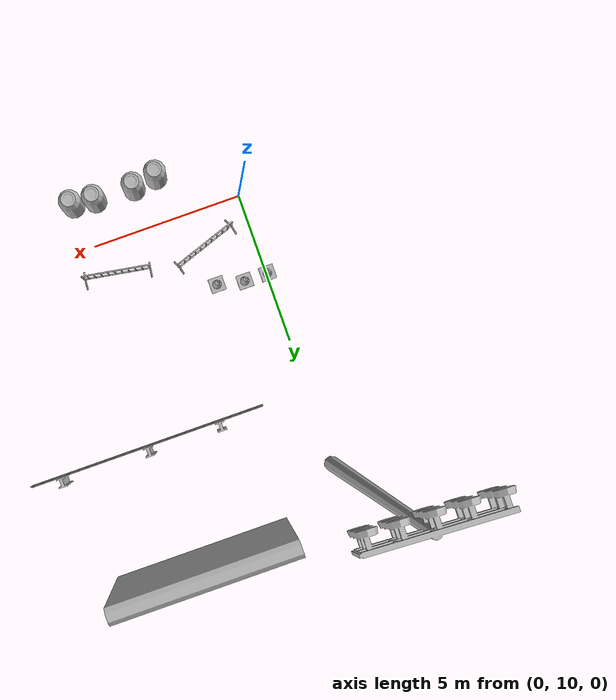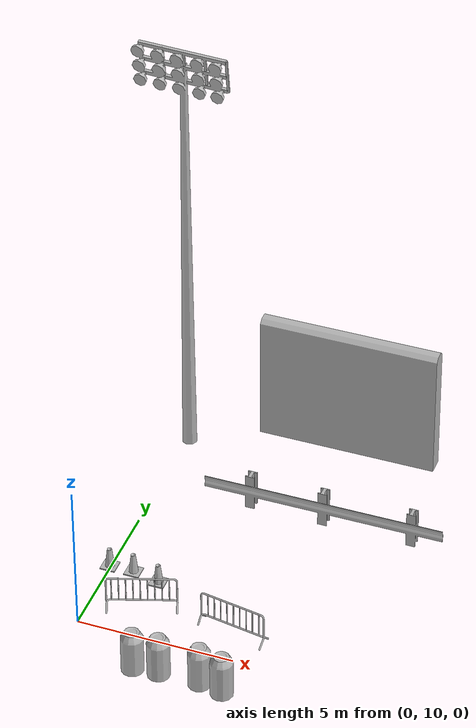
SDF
<sdf version="1.6">
 <world name="default">
  <model name="aws_robomaker_racetrack_CrashworthBucket_01_04">
   <link name="aws_CrashworthBucket_01::body">
    <inertial>
     <mass>5</mass>
     <inertia><ixx>1</ixx><ixy>0</ixy><ixz>0</ixz><iyy>1</iyy><iyz>0</iyz><izz>1</izz></inertia>
    </inertial>
    <visual name="visual">
     <geometry>
      <mesh>
       <uri>file://models/aws_robomaker_racetrack_CrashworthBucket_01/meshes/aws_CrashworthBucket_01_visual.DAE</uri>
      </mesh>
     </geometry>
     <material><shader type="pixel"><normal_map>__default__</normal_map></shader></material>
     <meta><layer>0</layer></meta>
    </visual>
    <collision name="collision_0">
     <geometry>
      <mesh>
       <uri>file://models/aws_robomaker_racetrack_CrashworthBucket_01/meshes/aws_CrashworthBucket_01_collision.DAE</uri>
       <scale>1 1 1</scale>
      </mesh>
     </geometry>
     <surface>
      <friction>
       <ode><mu>1</mu><mu2>1</mu2><fdir1>0 0 0</fdir1><slip1>0</slip1><slip2>0</slip2></ode>
       <torsional>
        <coefficient>1</coefficient>
        <patch_radius>0</patch_radius>
        <surface_radius>0</surface_radius>
        <use_patch_radius>1</use_patch_radius>
        <ode><slip>0</slip></ode>
       </torsional>
      </friction>
      <bounce><restitution_coefficient>0</restitution_coefficient><threshold>1e+06</threshold></bounce>
      <contact>
       <collide_without_contact>0</collide_without_contact>
       <collide_without_contact_bitmask>1</collide_without_contact_bitmask>
       <collide_bitmask>1</collide_bitmask>
       <ode>
        <soft_cfm>0</soft_cfm>
        <soft_erp>0.2</soft_erp>
        <kp>1e+13</kp>
        <kd>1</kd>
        <max_vel>0.01</max_vel>
        <min_depth>0</min_depth>
       </ode>
       <bullet>
        <split_impulse>1</split_impulse>
        <split_impulse_penetration_threshold>-0.01</split_impulse_penetration_threshold>
        <soft_cfm>0</soft_cfm>
        <soft_erp>0.2</soft_erp>
        <kp>1e+13</kp>
        <kd>1</kd>
       </bullet>
      </contact>
     </surface>
    </collision>
   </link>
   <static>1</static>
   <pose>2.35672 8.58743 0.054 0 -0 0.094608</pose>
  </model>
  <model name="aws_robomaker_racetrack_CrashworthBucket_01_05">
   <link name="aws_CrashworthBucket_01::body">
    <inertial>
     <mass>5</mass>
     <inertia><ixx>1</ixx><ixy>0</ixy><ixz>0</ixz><iyy>1</iyy><iyz>0</iyz><izz>1</izz></inertia>
    </inertial>
    <visual name="visual">
     <geometry>
      <mesh>
       <uri>file://models/aws_robomaker_racetrack_CrashworthBucket_01/meshes/aws_CrashworthBucket_01_visual.DAE</uri>
      </mesh>
     </geometry>
     <material><shader type="pixel"><normal_map>__default__</normal_map></shader></material>
     <meta><layer>0</layer></meta>
    </visual>
    <collision name="collision_0">
     <geometry>
      <mesh>
       <uri>file://models/aws_robomaker_racetrack_CrashworthBucket_01/meshes/aws_CrashworthBucket_01_collision.DAE</uri>
       <scale>1 1 1</scale>
      </mesh>
     </geometry>
     <surface>
      <friction>
       <ode><mu>1</mu><mu2>1</mu2><fdir1>0 0 0</fdir1><slip1>0</slip1><slip2>0</slip2></ode>
       <torsional>
        <coefficient>1</coefficient>
        <patch_radius>0</patch_radius>
        <surface_radius>0</surface_radius>
        <use_patch_radius>1</use_patch_radius>
        <ode><slip>0</slip></ode>
       </torsional>
      </friction>
      <bounce><restitution_coefficient>0</restitution_coefficient><threshold>1e+06</threshold></bounce>
      <contact>
       <collide_without_contact>0</collide_without_contact>
       <collide_without_contact_bitmask>1</collide_without_contact_bitmask>
       <collide_bitmask>1</collide_bitmask>
       <ode>
        <soft_cfm>0</soft_cfm>
        <soft_erp>0.2</soft_erp>
        <kp>1e+13</kp>
        <kd>1</kd>
        <max_vel>0.01</max_vel>
        <min_depth>0</min_depth>
       </ode>
       <bullet>
        <split_impulse>1</split_impulse>
        <split_impulse_penetration_threshold>-0.01</split_impulse_penetration_threshold>
        <soft_cfm>0</soft_cfm>
        <soft_erp>0.2</soft_erp>
        <kp>1e+13</kp>
        <kd>1</kd>
       </bullet>
      </contact>
     </surface>
    </collision>
   </link>
   <static>1</static>
   <pose>3.14399 8.69292 0 0 -0 0.292667</pose>
  </model>
  <model name="aws_robomaker_racetrack_CrashworthBucket_01_06">
   <link name="aws_CrashworthBucket_01::body">
    <inertial>
     <mass>5</mass>
     <inertia><ixx>1</ixx><ixy>0</ixy><ixz>0</ixz><iyy>1</iyy><iyz>0</iyz><izz>1</izz></inertia>
    </inertial>
    <visual name="visual">
     <geometry>
      <mesh>
       <uri>file://models/aws_robomaker_racetrack_CrashworthBucket_01/meshes/aws_CrashworthBucket_01_visual.DAE</uri>
      </mesh>
     </geometry>
     <material><shader type="pixel"><normal_map>__default__</normal_map></shader></material>
     <meta><layer>0</layer></meta>
    </visual>
    <collision name="collision_0">
     <geometry>
      <mesh>
       <uri>file://models/aws_robomaker_racetrack_CrashworthBucket_01/meshes/aws_CrashworthBucket_01_collision.DAE</uri>
       <scale>1 1 1</scale>
      </mesh>
     </geometry>
     <surface>
      <friction>
       <ode><mu>1</mu><mu2>1</mu2><fdir1>0 0 0</fdir1><slip1>0</slip1><slip2>0</slip2></ode>
       <torsional>
        <coefficient>1</coefficient>
        <patch_radius>0</patch_radius>
        <surface_radius>0</surface_radius>
        <use_patch_radius>1</use_patch_radius>
        <ode><slip>0</slip></ode>
       </torsional>
      </friction>
      <bounce><restitution_coefficient>0</restitution_coefficient><threshold>1e+06</threshold></bounce>
      <contact>
       <collide_without_contact>0</collide_without_contact>
       <collide_without_contact_bitmask>1</collide_without_contact_bitmask>
       <collide_bitmask>1</collide_bitmask>
       <ode>
        <soft_cfm>0</soft_cfm>
        <soft_erp>0.2</soft_erp>
        <kp>1e+13</kp>
        <kd>1</kd>
        <max_vel>0.01</max_vel>
        <min_depth>0</min_depth>
       </ode>
       <bullet>
        <split_impulse>1</split_impulse>
        <split_impulse_penetration_threshold>-0.01</split_impulse_penetration_threshold>
        <soft_cfm>0</soft_cfm>
        <soft_erp>0.2</soft_erp>
        <kp>1e+13</kp>
        <kd>1</kd>
       </bullet>
      </contact>
     </surface>
    </collision>
   </link>
   <static>1</static>
   <pose>5.18867 8.56895 0 0 0 -0.026658</pose>
  </model>
  <model name="aws_robomaker_racetrack_CrashworthBucket_01_43">
   <link name="aws_CrashworthBucket_01::body">
    <inertial>
     <mass>5</mass>
     <inertia><ixx>1</ixx><ixy>0</ixy><ixz>0</ixz><iyy>1</iyy><iyz>0</iyz><izz>1</izz></inertia>
    </inertial>
    <visual name="visual">
     <geometry>
      <mesh>
       <uri>file://models/aws_robomaker_racetrack_CrashworthBucket_01/meshes/aws_CrashworthBucket_01_visual.DAE</uri>
      </mesh>
     </geometry>
     <material><shader type="pixel"><normal_map>__default__</normal_map></shader></material>
     <meta><layer>0</layer></meta>
    </visual>
    <collision name="collision_0">
     <geometry>
      <mesh>
       <uri>file://models/aws_robomaker_racetrack_CrashworthBucket_01/meshes/aws_CrashworthBucket_01_collision.DAE</uri>
       <scale>1 1 1</scale>
      </mesh>
     </geometry>
     <surface>
      <friction>
       <ode><mu>1</mu><mu2>1</mu2><fdir1>0 0 0</fdir1><slip1>0</slip1><slip2>0</slip2></ode>
       <torsional>
        <coefficient>1</coefficient>
        <patch_radius>0</patch_radius>
        <surface_radius>0</surface_radius>
        <use_patch_radius>1</use_patch_radius>
        <ode><slip>0</slip></ode>
       </torsional>
      </friction>
      <bounce><restitution_coefficient>0</restitution_coefficient><threshold>1e+06</threshold></bounce>
      <contact>
       <collide_without_contact>0</collide_without_contact>
       <collide_without_contact_bitmask>1</collide_without_contact_bitmask>
       <collide_bitmask>1</collide_bitmask>
       <ode>
        <soft_cfm>0</soft_cfm>
        <soft_erp>0.2</soft_erp>
        <kp>1e+13</kp>
        <kd>1</kd>
        <max_vel>0.01</max_vel>
        <min_depth>0</min_depth>
       </ode>
       <bullet>
        <split_impulse>1</split_impulse>
        <split_impulse_penetration_threshold>-0.01</split_impulse_penetration_threshold>
        <soft_cfm>0</soft_cfm>
        <soft_erp>0.2</soft_erp>
        <kp>1e+13</kp>
        <kd>1</kd>
       </bullet>
      </contact>
     </surface>
    </collision>
   </link>
   <static>1</static>
   <pose>4.45229 8.66174 0.054 0 -0 0.095583</pose>
  </model>
  <model name="aws_robomaker_racetrack_Fence_01_15">
   <link name="aws_Fence_01::body">
    <inertial>
     <mass>5</mass>
     <inertia><ixx>1</ixx><ixy>0</ixy><ixz>0</ixz><iyy>1</iyy><iyz>0</iyz><izz>1</izz></inertia>
    </inertial>
    <visual name="visual">
     <geometry>
      <mesh><uri>file://models/aws_robomaker_racetrack_Fence_01/meshes/aws_Fence_01_visual.DAE</uri></mesh>
     </geometry>
     <material><shader type="pixel"><normal_map>__default__</normal_map></shader></material>
     <meta><layer>0</layer></meta>
    </visual>
    <collision name="collision_0">
     <geometry>
      <mesh>
       <uri>file://models/aws_robomaker_racetrack_Fence_01/meshes/aws_Fence_01_collision.DAE</uri>
       <scale>1 1 1</scale>
      </mesh>
     </geometry>
     <surface>
      <friction>
       <ode><mu>1</mu><mu2>1</mu2><fdir1>0 0 0</fdir1><slip1>0</slip1><slip2>0</slip2></ode>
       <torsional>
        <coefficient>1</coefficient>
        <patch_radius>0</patch_radius>
        <surface_radius>0</surface_radius>
        <use_patch_radius>1</use_patch_radius>
        <ode><slip>0</slip></ode>
       </torsional>
      </friction>
      <bounce><restitution_coefficient>0</restitution_coefficient><threshold>1e+06</threshold></bounce>
      <contact>
       <collide_without_contact>0</collide_without_contact>
       <collide_without_contact_bitmask>1</collide_without_contact_bitmask>
       <collide_bitmask>1</collide_bitmask>
       <ode>
        <soft_cfm>0</soft_cfm>
        <soft_erp>0.2</soft_erp>
        <kp>1e+13</kp>
        <kd>1</kd>
        <max_vel>0.01</max_vel>
        <min_depth>0</min_depth>
       </ode>
       <bullet>
        <split_impulse>1</split_impulse>
        <split_impulse_penetration_threshold>-0.01</split_impulse_penetration_threshold>
        <soft_cfm>0</soft_cfm>
        <soft_erp>0.2</soft_erp>
        <kp>1e+13</kp>
        <kd>1</kd>
       </bullet>
      </contact>
     </surface>
    </collision>
   </link>
   <static>1</static>
   <pose>5.47501 16.8189 0.054 0 -0 1.57158</pose>
  </model>
  <model name="aws_robomaker_racetrack_Fence_02_05">
   <link name="aws_Fence_02::body">
    <inertial>
     <mass>5</mass>
     <inertia><ixx>9.6</ixx><ixy>0</ixy><ixz>0</ixz><iyy>8.2</iyy><iyz>0</iyz><izz>2.1</izz></inertia>
    </inertial>
    <visual name="visual">
     <geometry>
      <mesh><uri>file://models/aws_robomaker_racetrack_Fence_02/meshes/aws_Fence_02_visual.DAE</uri></mesh>
     </geometry>
     <material><shader type="pixel"><normal_map>__default__</normal_map></shader></material>
     <meta><layer>0</layer></meta>
    </visual>
    <collision name="collision_0">
     <geometry>
      <mesh>
       <uri>file://models/aws_robomaker_racetrack_Fence_02/meshes/aws_Fence_02_collision.DAE</uri>
       <scale>1 1 1</scale>
      </mesh>
     </geometry>
     <surface>
      <friction>
       <ode><mu>1</mu><mu2>1</mu2><fdir1>0 0 0</fdir1><slip1>0</slip1><slip2>0</slip2></ode>
       <torsional>
        <coefficient>1</coefficient>
        <patch_radius>0</patch_radius>
        <surface_radius>0</surface_radius>
        <use_patch_radius>1</use_patch_radius>
        <ode><slip>0</slip></ode>
       </torsional>
      </friction>
      <bounce><restitution_coefficient>0</restitution_coefficient><threshold>1e+06</threshold></bounce>
      <contact>
       <collide_without_contact>0</collide_without_contact>
       <collide_without_contact_bitmask>1</collide_without_contact_bitmask>
       <collide_bitmask>1</collide_bitmask>
      </contact>
     </surface>
    </collision>
   </link>
   <static>1</static>
   <pose>4.57205 11.1353 0 0 0 -1.73608</pose>
  </model>
  <model name="aws_robomaker_racetrack_Fence_02_07">
   <link name="aws_Fence_02::body">
    <inertial>
     <mass>5</mass>
     <inertia><ixx>9.6</ixx><ixy>0</ixy><ixz>0</ixz><iyy>8.2</iyy><iyz>0</iyz><izz>2.1</izz></inertia>
    </inertial>
    <visual name="visual">
     <geometry>
      <mesh><uri>file://models/aws_robomaker_racetrack_Fence_02/meshes/aws_Fence_02_visual.DAE</uri></mesh>
     </geometry>
     <material><shader type="pixel"><normal_map>__default__</normal_map></shader></material>
     <meta><layer>0</layer></meta>
    </visual>
    <collision name="collision_0">
     <geometry>
      <mesh>
       <uri>file://models/aws_robomaker_racetrack_Fence_02/meshes/aws_Fence_02_collision.DAE</uri>
       <scale>1 1 1</scale>
      </mesh>
     </geometry>
     <surface>
      <friction>
       <ode><mu>1</mu><mu2>1</mu2><fdir1>0 0 0</fdir1><slip1>0</slip1><slip2>0</slip2></ode>
       <torsional>
        <coefficient>1</coefficient>
        <patch_radius>0</patch_radius>
        <surface_radius>0</surface_radius>
        <use_patch_radius>1</use_patch_radius>
        <ode><slip>0</slip></ode>
       </torsional>
      </friction>
      <bounce><restitution_coefficient>0</restitution_coefficient><threshold>1e+06</threshold></bounce>
      <contact>
       <collide_without_contact>0</collide_without_contact>
       <collide_without_contact_bitmask>1</collide_without_contact_bitmask>
       <collide_bitmask>1</collide_bitmask>
      </contact>
     </surface>
    </collision>
   </link>
   <static>1</static>
   <pose>1.60246 11.2143 0 0 -0 1.90339</pose>
  </model>
  <model name="aws_robomaker_racetrack_TrafficCone_01_05">
   <link name="aws_TrafficCone_01::body">
    <inertial>
     <mass>0.5</mass>
     <inertia><ixx>1</ixx><ixy>0</ixy><ixz>0</ixz><iyy>1</iyy><iyz>0</iyz><izz>1</izz></inertia>
    </inertial>
    <visual name="visual">
     <geometry>
      <mesh>
       <uri>file://models/aws_robomaker_racetrack_TrafficCone_01/meshes/aws_TrafficCone_01_visual.DAE</uri>
      </mesh>
     </geometry>
     <material><shader type="pixel"><normal_map>__default__</normal_map></shader></material>
     <meta><layer>0</layer></meta>
    </visual>
    <collision name="collision_0">
     <geometry>
      <mesh>
       <uri>file://models/aws_robomaker_racetrack_TrafficCone_01/meshes/aws_TrafficCone_01_coliision.DAE</uri>
       <scale>1 1 1</scale>
      </mesh>
     </geometry>
     <surface>
      <friction>
       <ode><mu>1</mu><mu2>1</mu2><fdir1>0 0 0</fdir1><slip1>0</slip1><slip2>0</slip2></ode>
       <torsional>
        <coefficient>1</coefficient>
        <patch_radius>0</patch_radius>
        <surface_radius>0</surface_radius>
        <use_patch_radius>1</use_patch_radius>
        <ode><slip>0</slip></ode>
       </torsional>
      </friction>
      <bounce><restitution_coefficient>0</restitution_coefficient><threshold>1e+06</threshold></bounce>
      <contact>
       <collide_without_contact>0</collide_without_contact>
       <collide_without_contact_bitmask>1</collide_without_contact_bitmask>
       <collide_bitmask>1</collide_bitmask>
       <ode>
        <soft_cfm>0</soft_cfm>
        <soft_erp>0.2</soft_erp>
        <kp>1e+13</kp>
        <kd>1</kd>
        <max_vel>0.01</max_vel>
        <min_depth>0</min_depth>
       </ode>
       <bullet>
        <split_impulse>1</split_impulse>
        <split_impulse_penetration_threshold>-0.01</split_impulse_penetration_threshold>
        <soft_cfm>0</soft_cfm>
        <soft_erp>0.2</soft_erp>
        <kp>1e+13</kp>
        <kd>1</kd>
       </bullet>
      </contact>
     </surface>
    </collision>
   </link>
   <static>1</static>
   <pose>1.63274 12.4879 0 0 -0 0</pose>
  </model>
  <model name="aws_robomaker_racetrack_TrafficCone_01_06">
   <link name="aws_TrafficCone_01::body">
    <inertial>
     <mass>0.5</mass>
     <inertia><ixx>1</ixx><ixy>0</ixy><ixz>0</ixz><iyy>1</iyy><iyz>0</iyz><izz>1</izz></inertia>
    </inertial>
    <visual name="visual">
     <geometry>
      <mesh>
       <uri>file://models/aws_robomaker_racetrack_TrafficCone_01/meshes/aws_TrafficCone_01_visual.DAE</uri>
      </mesh>
     </geometry>
     <material><shader type="pixel"><normal_map>__default__</normal_map></shader></material>
     <meta><layer>0</layer></meta>
    </visual>
    <collision name="collision_0">
     <geometry>
      <mesh>
       <uri>file://models/aws_robomaker_racetrack_TrafficCone_01/meshes/aws_TrafficCone_01_coliision.DAE</uri>
       <scale>1 1 1</scale>
      </mesh>
     </geometry>
     <surface>
      <friction>
       <ode><mu>1</mu><mu2>1</mu2><fdir1>0 0 0</fdir1><slip1>0</slip1><slip2>0</slip2></ode>
       <torsional>
        <coefficient>1</coefficient>
        <patch_radius>0</patch_radius>
        <surface_radius>0</surface_radius>
        <use_patch_radius>1</use_patch_radius>
        <ode><slip>0</slip></ode>
       </torsional>
      </friction>
      <bounce><restitution_coefficient>0</restitution_coefficient><threshold>1e+06</threshold></bounce>
      <contact>
       <collide_without_contact>0</collide_without_contact>
       <collide_without_contact_bitmask>1</collide_without_contact_bitmask>
       <collide_bitmask>1</collide_bitmask>
       <ode>
        <soft_cfm>0</soft_cfm>
        <soft_erp>0.2</soft_erp>
        <kp>1e+13</kp>
        <kd>1</kd>
        <max_vel>0.01</max_vel>
        <min_depth>0</min_depth>
       </ode>
       <bullet>
        <split_impulse>1</split_impulse>
        <split_impulse_penetration_threshold>-0.01</split_impulse_penetration_threshold>
        <soft_cfm>0</soft_cfm>
        <soft_erp>0.2</soft_erp>
        <kp>1e+13</kp>
        <kd>1</kd>
       </bullet>
      </contact>
     </surface>
    </collision>
   </link>
   <static>1</static>
   <pose>0.741449 12.6798 0 0 -0 0</pose>
  </model>
  <model name="aws_robomaker_racetrack_TrafficCone_01_07">
   <link name="aws_TrafficCone_01::body">
    <inertial>
     <mass>0.5</mass>
     <inertia><ixx>1</ixx><ixy>0</ixy><ixz>0</ixz><iyy>1</iyy><iyz>0</iyz><izz>1</izz></inertia>
    </inertial>
    <visual name="visual">
     <geometry>
      <mesh>
       <uri>file://models/aws_robomaker_racetrack_TrafficCone_01/meshes/aws_TrafficCone_01_visual.DAE</uri>
      </mesh>
     </geometry>
     <material><shader type="pixel"><normal_map>__default__</normal_map></shader></material>
     <meta><layer>0</layer></meta>
    </visual>
    <collision name="collision_0">
     <geometry>
      <mesh>
       <uri>file://models/aws_robomaker_racetrack_TrafficCone_01/meshes/aws_TrafficCone_01_coliision.DAE</uri>
       <scale>1 1 1</scale>
      </mesh>
     </geometry>
     <surface>
      <friction>
       <ode><mu>1</mu><mu2>1</mu2><fdir1>0 0 0</fdir1><slip1>0</slip1><slip2>0</slip2></ode>
       <torsional>
        <coefficient>1</coefficient>
        <patch_radius>0</patch_radius>
        <surface_radius>0</surface_radius>
        <use_patch_radius>1</use_patch_radius>
        <ode><slip>0</slip></ode>
       </torsional>
      </friction>
      <bounce><restitution_coefficient>0</restitution_coefficient><threshold>1e+06</threshold></bounce>
      <contact>
       <collide_without_contact>0</collide_without_contact>
       <collide_without_contact_bitmask>1</collide_without_contact_bitmask>
       <collide_bitmask>1</collide_bitmask>
       <ode>
        <soft_cfm>0</soft_cfm>
        <soft_erp>0.2</soft_erp>
        <kp>1e+13</kp>
        <kd>1</kd>
        <max_vel>0.01</max_vel>
        <min_depth>0</min_depth>
       </ode>
       <bullet>
        <split_impulse>1</split_impulse>
        <split_impulse_penetration_threshold>-0.01</split_impulse_penetration_threshold>
        <soft_cfm>0</soft_cfm>
        <soft_erp>0.2</soft_erp>
        <kp>1e+13</kp>
        <kd>1</kd>
       </bullet>
      </contact>
     </surface>
    </collision>
   </link>
   <static>1</static>
   <pose>-0.041804 12.6793 0 0 -0 0</pose>
  </model>
  <model name="aws_robomaker_racetrack_Light_01_01">
   <link name="aws_Light_01::body">
    <inertial>
     <mass>100</mass>
     <inertia><ixx>1</ixx><ixy>0</ixy><ixz>0</ixz><iyy>1</iyy><iyz>0</iyz><izz>1</izz></inertia>
    </inertial>
    <visual name="visual">
     <geometry>
      <mesh><uri>file://models/aws_robomaker_racetrack_Light_01/meshes/aws_Light_01_visual.DAE</uri></mesh>
     </geometry>
     <material><shader type="pixel"><normal_map>__default__</normal_map></shader></material>
     <meta><layer>0</layer></meta>
    </visual>
    <collision name="collision_0">
     <geometry>
      <mesh>
       <uri>file://models/aws_robomaker_racetrack_Light_01/meshes/aws_Light_01_collision.DAE</uri>
       <scale>1 1 1</scale>
      </mesh>
     </geometry>
     <surface>
      <friction>
       <ode><mu>1</mu><mu2>1</mu2><fdir1>0 0 0</fdir1><slip1>0</slip1><slip2>0</slip2></ode>
       <torsional>
        <coefficient>1</coefficient>
        <patch_radius>0</patch_radius>
        <surface_radius>0</surface_radius>
        <use_patch_radius>1</use_patch_radius>
        <ode><slip>0</slip></ode>
       </torsional>
      </friction>
      <bounce><restitution_coefficient>0</restitution_coefficient><threshold>1e+06</threshold></bounce>
      <contact>
       <collide_without_contact>0</collide_without_contact>
       <collide_without_contact_bitmask>1</collide_without_contact_bitmask>
       <collide_bitmask>1</collide_bitmask>
       <ode>
        <soft_cfm>0</soft_cfm>
        <soft_erp>0.2</soft_erp>
        <kp>1e+13</kp>
        <kd>1</kd>
        <max_vel>0.01</max_vel>
        <min_depth>0</min_depth>
       </ode>
       <bullet>
        <split_impulse>1</split_impulse>
        <split_impulse_penetration_threshold>-0.01</split_impulse_penetration_threshold>
        <soft_cfm>0</soft_cfm>
        <soft_erp>0.2</soft_erp>
        <kp>1e+13</kp>
        <kd>1</kd>
       </bullet>
      </contact>
     </surface>
    </collision>
   </link>
   <static>1</static>
   <pose>0.041158 19.0887 0 0 -0 3.09146</pose>
  </model>
  <model name="aws_robomaker_racetrack_Wall_01_01">
   <link name="aws_Wall_01::body">
    <inertial>
     <mass>500</mass>
     <inertia><ixx>1</ixx><ixy>0</ixy><ixz>0</ixz><iyy>1</iyy><iyz>0</iyz><izz>1</izz></inertia>
    </inertial>
    <visual name="visual">
     <geometry>
      <mesh>
       <uri>file://models/aws_robomaker_racetrack_Wall_01/meshes/aws_Wall_01_visual.DAE</uri>
       <scale>2.59853 2.59853 2.59853</scale>
      </mesh>
     </geometry>
     <material><shader type="pixel"><normal_map>__default__</normal_map></shader></material>
     <meta><layer>1</layer></meta>
    </visual>
    <collision name="collision_0">
     <geometry>
      <mesh>
       <uri>file://models/aws_robomaker_racetrack_Wall_01/meshes/aws_Wall_01_collision.DAE</uri>
       <scale>2.59853 2.59853 2.59853</scale>
      </mesh>
     </geometry>
     <surface>
      <friction>
       <ode><mu>1</mu><mu2>1</mu2><fdir1>0 0 0</fdir1><slip1>0</slip1><slip2>0</slip2></ode>
       <torsional>
        <coefficient>1</coefficient>
        <patch_radius>0</patch_radius>
        <surface_radius>0</surface_radius>
        <use_patch_radius>1</use_patch_radius>
        <ode><slip>0</slip></ode>
       </torsional>
      </friction>
      <bounce><restitution_coefficient>0</restitution_coefficient><threshold>1e+06</threshold></bounce>
      <contact>
       <collide_without_contact>0</collide_without_contact>
       <collide_without_contact_bitmask>1</collide_without_contact_bitmask>
       <collide_bitmask>1</collide_bitmask>
       <ode>
        <soft_cfm>0</soft_cfm>
        <soft_erp>0.2</soft_erp>
        <kp>1e+13</kp>
        <kd>1</kd>
        <max_vel>0.01</max_vel>
        <min_depth>0</min_depth>
       </ode>
       <bullet>
        <split_impulse>1</split_impulse>
        <split_impulse_penetration_threshold>-0.01</split_impulse_penetration_threshold>
        <soft_cfm>0</soft_cfm>
        <soft_erp>0.2</soft_erp>
        <kp>1e+13</kp>
        <kd>1</kd>
       </bullet>
      </contact>
     </surface>
    </collision>
   </link>
   <static>1</static>
   <pose>4.94795 20.6846 0 0 -0 0</pose>
  </model>
  <model name="ground_plane">
   <pose>0 0 -1.29145e+07 0 -0 0</pose>
   <link name="link">
    <pose>0 0 -1 0 -0 0</pose>
    <inertial>
     <inertia><ixx>1</ixx><ixy>0</ixy><ixz>0</ixz><iyy>1</iyy><iyz>0</iyz><izz>1</izz></inertia>
     <mass>1</mass>
    </inertial>
   </link>
  </model>
 </world>
</sdf>
